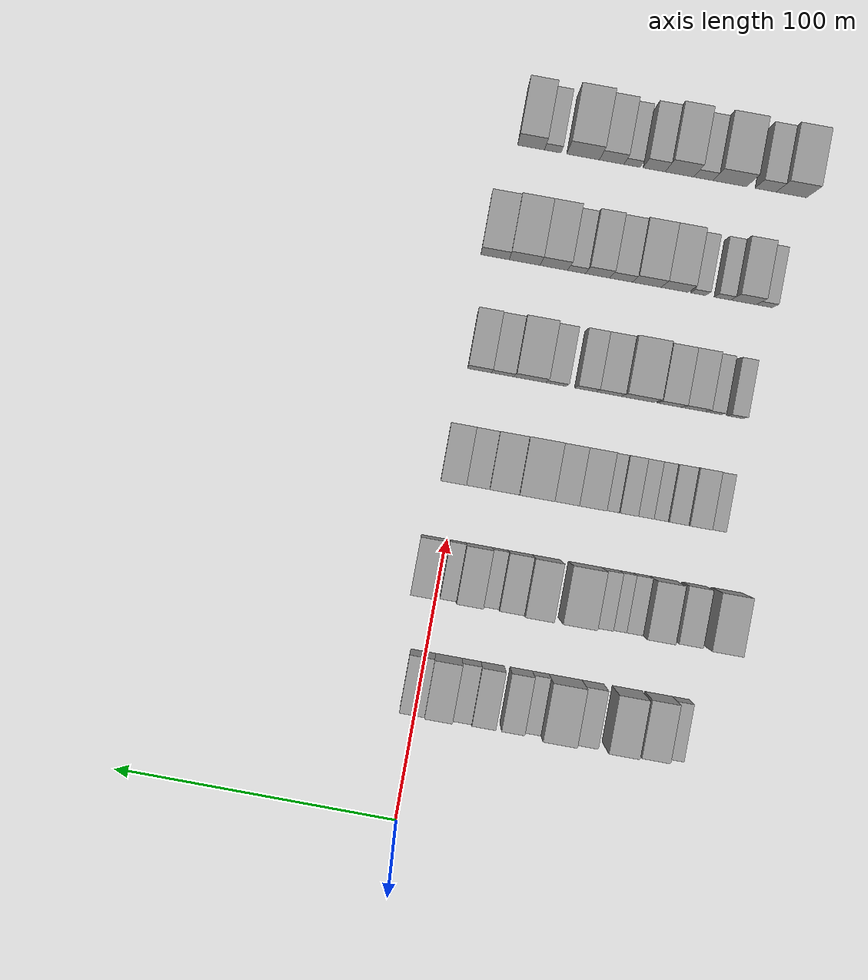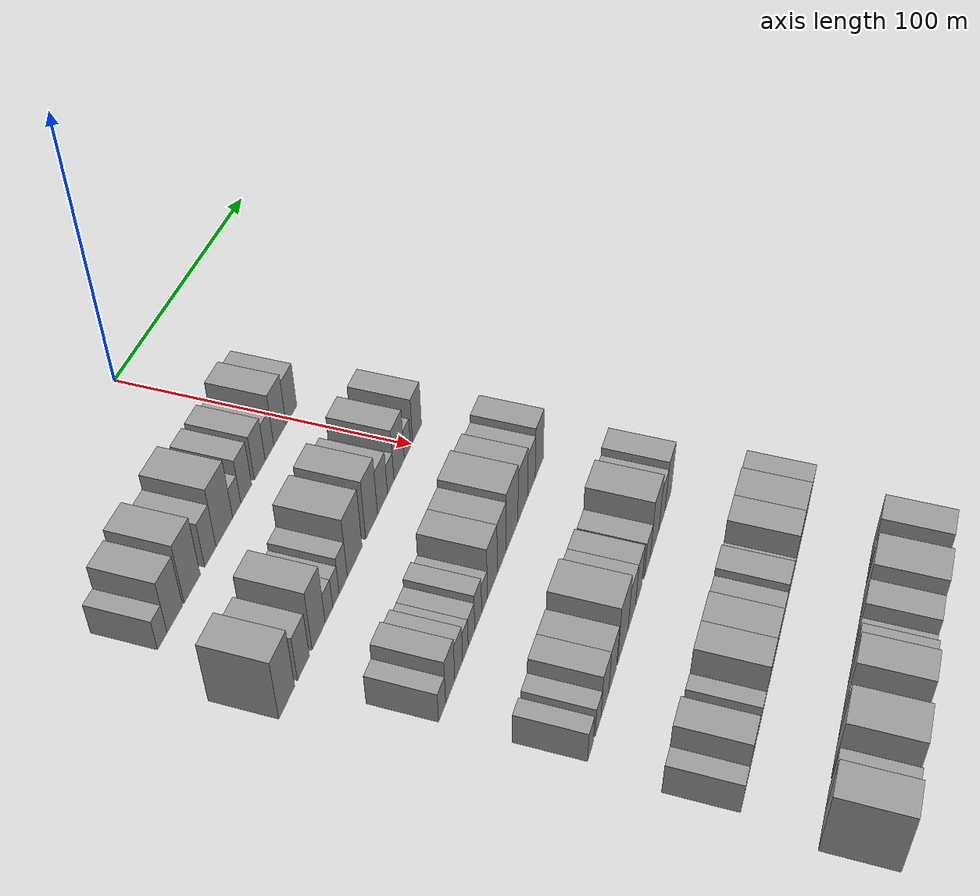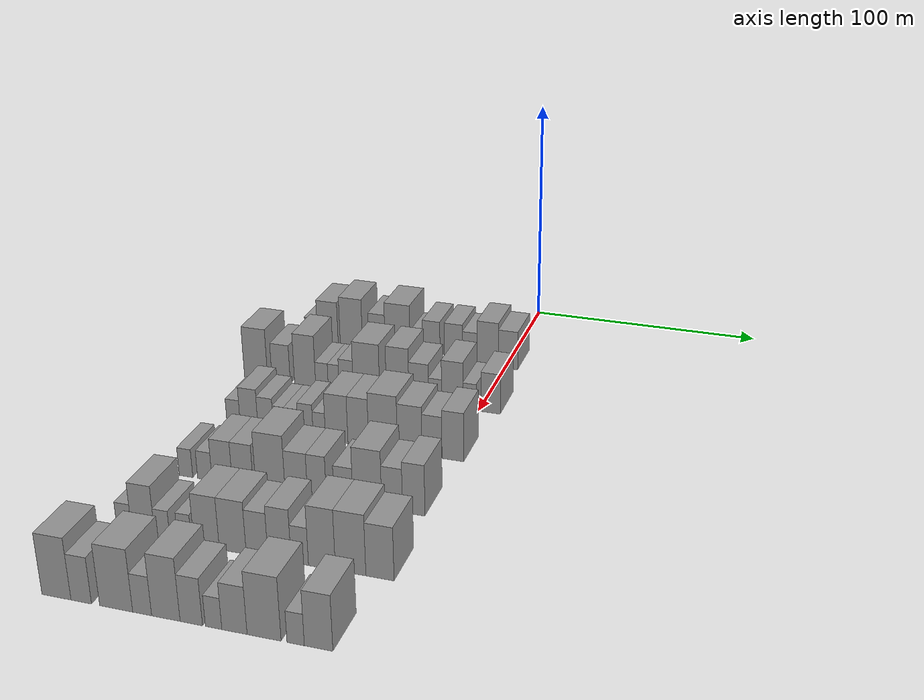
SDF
<sdf version="1.6">
 <world name="default">
  <model name="building_62">
   <static>1</static>
   <pose>50.0000 -90.3593 0 0.000000 0.000000 0.000000</pose>
   <link name="link">
    <pose>0 0 6.00 0 0 0</pose>
    <collision name="collision"><geometry><box><size>20.0000 5.9306 12.0000</size></box></geometry></collision>
    <visual name="visual">
     <cast_shadows>0</cast_shadows>
     <geometry><box><size>20.0000 5.9306 12.0000</size></box></geometry>
     <material>
      <script>
       <uri>model://grey_wall/materials/scripts</uri>
       <uri>model://grey_wall/materials/textures</uri>
       <name>vrc/grey_wall</name>
      </script>
     </material>
    </visual>
   </link>
  </model>
  <model name="building_63">
   <static>1</static>
   <pose>50.0000 -82.4639 0 0.000000 0.000000 0.000000</pose>
   <link name="link">
    <pose>0 0 10.50 0 0 0</pose>
    <collision name="collision"><geometry><box><size>20.0000 9.8602 21.0000</size></box></geometry></collision>
    <visual name="visual">
     <cast_shadows>0</cast_shadows>
     <geometry><box><size>20.0000 9.8602 21.0000</size></box></geometry>
     <material>
      <script>
       <uri>model://grey_wall/materials/scripts</uri>
       <uri>model://grey_wall/materials/textures</uri>
       <name>vrc/grey_wall</name>
      </script>
     </material>
    </visual>
   </link>
  </model>
  <model name="building_64">
   <static>1</static>
   <pose>50.0000 -71.2264 0 0.000000 0.000000 0.000000</pose>
   <link name="link">
    <pose>0 0 12.00 0 0 0</pose>
    <collision name="collision"><geometry><box><size>20.0000 10.6148 24.0000</size></box></geometry></collision>
    <visual name="visual">
     <cast_shadows>0</cast_shadows>
     <geometry><box><size>20.0000 10.6148 24.0000</size></box></geometry>
     <material>
      <script>
       <uri>model://grey_wall/materials/scripts</uri>
       <uri>model://grey_wall/materials/textures</uri>
       <name>vrc/grey_wall</name>
      </script>
     </material>
    </visual>
   </link>
  </model>
  <model name="building_65">
   <static>1</static>
   <pose>50.0000 -59.0581 0 0.000000 0.000000 0.000000</pose>
   <link name="link">
    <pose>0 0 9.00 0 0 0</pose>
    <collision name="collision"><geometry><box><size>20.0000 7.7218 18.0000</size></box></geometry></collision>
    <visual name="visual">
     <cast_shadows>0</cast_shadows>
     <geometry><box><size>20.0000 7.7218 18.0000</size></box></geometry>
     <material>
      <script>
       <uri>model://grey_wall/materials/scripts</uri>
       <uri>model://grey_wall/materials/textures</uri>
       <name>vrc/grey_wall</name>
      </script>
     </material>
    </visual>
   </link>
  </model>
  <model name="building_66">
   <static>1</static>
   <pose>50.0000 -49.3336 0 0.000000 0.000000 0.000000</pose>
   <link name="link">
    <pose>0 0 12.00 0 0 0</pose>
    <collision name="collision"><geometry><box><size>20.0000 11.7272 24.0000</size></box></geometry></collision>
    <visual name="visual">
     <cast_shadows>0</cast_shadows>
     <geometry><box><size>20.0000 11.7272 24.0000</size></box></geometry>
     <material>
      <script>
       <uri>model://grey_wall/materials/scripts</uri>
       <uri>model://grey_wall/materials/textures</uri>
       <name>vrc/grey_wall</name>
      </script>
     </material>
    </visual>
   </link>
  </model>
  <model name="building_67">
   <static>1</static>
   <pose>50.0000 -40.5230 0 0.000000 0.000000 0.000000</pose>
   <link name="link">
    <pose>0 0 6.00 0 0 0</pose>
    <collision name="collision"><geometry><box><size>20.0000 5.8940 12.0000</size></box></geometry></collision>
    <visual name="visual">
     <cast_shadows>0</cast_shadows>
     <geometry><box><size>20.0000 5.8940 12.0000</size></box></geometry>
     <material>
      <script>
       <uri>model://grey_wall/materials/scripts</uri>
       <uri>model://grey_wall/materials/textures</uri>
       <name>vrc/grey_wall</name>
      </script>
     </material>
    </visual>
   </link>
  </model>
  <model name="building_68">
   <static>1</static>
   <pose>50.0000 -33.5861 0 0.000000 0.000000 0.000000</pose>
   <link name="link">
    <pose>0 0 9.00 0 0 0</pose>
    <collision name="collision"><geometry><box><size>20.0000 7.9797 18.0000</size></box></geometry></collision>
    <visual name="visual">
     <cast_shadows>0</cast_shadows>
     <geometry><box><size>20.0000 7.9797 18.0000</size></box></geometry>
     <material>
      <script>
       <uri>model://grey_wall/materials/scripts</uri>
       <uri>model://grey_wall/materials/textures</uri>
       <name>vrc/grey_wall</name>
      </script>
     </material>
    </visual>
   </link>
  </model>
  <model name="building_69">
   <static>1</static>
   <pose>50.0000 -23.4748 0 0.000000 0.000000 0.000000</pose>
   <link name="link">
    <pose>0 0 9.00 0 0 0</pose>
    <collision name="collision"><geometry><box><size>20.0000 8.2430 18.0000</size></box></geometry></collision>
    <visual name="visual">
     <cast_shadows>0</cast_shadows>
     <geometry><box><size>20.0000 8.2430 18.0000</size></box></geometry>
     <material>
      <script>
       <uri>model://grey_wall/materials/scripts</uri>
       <uri>model://grey_wall/materials/textures</uri>
       <name>vrc/grey_wall</name>
      </script>
     </material>
    </visual>
   </link>
  </model>
  <model name="building_70">
   <static>1</static>
   <pose>50.0000 -15.9888 0 0.000000 0.000000 0.000000</pose>
   <link name="link">
    <pose>0 0 7.50 0 0 0</pose>
    <collision name="collision"><geometry><box><size>20.0000 6.7289 15.0000</size></box></geometry></collision>
    <visual name="visual">
     <cast_shadows>0</cast_shadows>
     <geometry><box><size>20.0000 6.7289 15.0000</size></box></geometry>
     <material>
      <script>
       <uri>model://grey_wall/materials/scripts</uri>
       <uri>model://grey_wall/materials/textures</uri>
       <name>vrc/grey_wall</name>
      </script>
     </material>
    </visual>
   </link>
  </model>
  <model name="building_71">
   <static>1</static>
   <pose>50.0000 -7.8164 0 0.000000 0.000000 0.000000</pose>
   <link name="link">
    <pose>0 0 10.50 0 0 0</pose>
    <collision name="collision"><geometry><box><size>20.0000 9.6159 21.0000</size></box></geometry></collision>
    <visual name="visual">
     <cast_shadows>0</cast_shadows>
     <geometry><box><size>20.0000 9.6159 21.0000</size></box></geometry>
     <material>
      <script>
       <uri>model://grey_wall/materials/scripts</uri>
       <uri>model://grey_wall/materials/textures</uri>
       <name>vrc/grey_wall</name>
      </script>
     </material>
    </visual>
   </link>
  </model>
  <model name="building_72">
   <static>1</static>
   <pose>50.0000 1.3254 0 0.000000 0.000000 0.000000</pose>
   <link name="link">
    <pose>0 0 9.00 0 0 0</pose>
    <collision name="collision"><geometry><box><size>20.0000 8.6677 18.0000</size></box></geometry></collision>
    <visual name="visual">
     <cast_shadows>0</cast_shadows>
     <geometry><box><size>20.0000 8.6677 18.0000</size></box></geometry>
     <material>
      <script>
       <uri>model://grey_wall/materials/scripts</uri>
       <uri>model://grey_wall/materials/textures</uri>
       <name>vrc/grey_wall</name>
      </script>
     </material>
    </visual>
   </link>
  </model>
  <model name="building_199">
   <static>1</static>
   <pose>90.0000 -99.2210 0 0.000000 0.000000 0.000000</pose>
   <link name="link">
    <pose>0 0 12.00 0 0 0</pose>
    <collision name="collision"><geometry><box><size>20.0000 10.7928 24.0000</size></box></geometry></collision>
    <visual name="visual">
     <cast_shadows>0</cast_shadows>
     <geometry><box><size>20.0000 10.7928 24.0000</size></box></geometry>
     <material>
      <script>
       <uri>model://grey_wall/materials/scripts</uri>
       <uri>model://grey_wall/materials/textures</uri>
       <name>vrc/grey_wall</name>
      </script>
     </material>
    </visual>
   </link>
  </model>
  <model name="building_200">
   <static>1</static>
   <pose>90.0000 -87.6191 0 0.000000 0.000000 0.000000</pose>
   <link name="link">
    <pose>0 0 9.00 0 0 0</pose>
    <collision name="collision"><geometry><box><size>20.0000 8.4111 18.0000</size></box></geometry></collision>
    <visual name="visual">
     <cast_shadows>0</cast_shadows>
     <geometry><box><size>20.0000 8.4111 18.0000</size></box></geometry>
     <material>
      <script>
       <uri>model://grey_wall/materials/scripts</uri>
       <uri>model://grey_wall/materials/textures</uri>
       <name>vrc/grey_wall</name>
      </script>
     </material>
    </visual>
   </link>
  </model>
  <model name="building_201">
   <static>1</static>
   <pose>90.0000 -76.5967 0 0.000000 0.000000 0.000000</pose>
   <link name="link">
    <pose>0 0 12.00 0 0 0</pose>
    <collision name="collision"><geometry><box><size>20.0000 9.6337 24.0000</size></box></geometry></collision>
    <visual name="visual">
     <cast_shadows>0</cast_shadows>
     <geometry><box><size>20.0000 9.6337 24.0000</size></box></geometry>
     <material>
      <script>
       <uri>model://grey_wall/materials/scripts</uri>
       <uri>model://grey_wall/materials/textures</uri>
       <name>vrc/grey_wall</name>
      </script>
     </material>
    </visual>
   </link>
  </model>
  <model name="building_202">
   <static>1</static>
   <pose>90.0000 -68.9331 0 0.000000 0.000000 0.000000</pose>
   <link name="link">
    <pose>0 0 6.00 0 0 0</pose>
    <collision name="collision"><geometry><box><size>20.0000 5.6935 12.0000</size></box></geometry></collision>
    <visual name="visual">
     <cast_shadows>0</cast_shadows>
     <geometry><box><size>20.0000 5.6935 12.0000</size></box></geometry>
     <material>
      <script>
       <uri>model://grey_wall/materials/scripts</uri>
       <uri>model://grey_wall/materials/textures</uri>
       <name>vrc/grey_wall</name>
      </script>
     </material>
    </visual>
   </link>
  </model>
  <model name="building_203">
   <static>1</static>
   <pose>90.0000 -63.6146 0 0.000000 0.000000 0.000000</pose>
   <link name="link">
    <pose>0 0 6.00 0 0 0</pose>
    <collision name="collision"><geometry><box><size>20.0000 4.9434 12.0000</size></box></geometry></collision>
    <visual name="visual">
     <cast_shadows>0</cast_shadows>
     <geometry><box><size>20.0000 4.9434 12.0000</size></box></geometry>
     <material>
      <script>
       <uri>model://grey_wall/materials/scripts</uri>
       <uri>model://grey_wall/materials/textures</uri>
       <name>vrc/grey_wall</name>
      </script>
     </material>
    </visual>
   </link>
  </model>
  <model name="building_204">
   <static>1</static>
   <pose>90.0000 -57.9776 0 0.000000 0.000000 0.000000</pose>
   <link name="link">
    <pose>0 0 7.50 0 0 0</pose>
    <collision name="collision"><geometry><box><size>20.0000 6.3308 15.0000</size></box></geometry></collision>
    <visual name="visual">
     <cast_shadows>0</cast_shadows>
     <geometry><box><size>20.0000 6.3308 15.0000</size></box></geometry>
     <material>
      <script>
       <uri>model://grey_wall/materials/scripts</uri>
       <uri>model://grey_wall/materials/textures</uri>
       <name>vrc/grey_wall</name>
      </script>
     </material>
    </visual>
   </link>
  </model>
  <model name="building_205">
   <static>1</static>
   <pose>90.0000 -48.9241 0 0.000000 0.000000 0.000000</pose>
   <link name="link">
    <pose>0 0 12.00 0 0 0</pose>
    <collision name="collision"><geometry><box><size>20.0000 11.7762 24.0000</size></box></geometry></collision>
    <visual name="visual">
     <cast_shadows>0</cast_shadows>
     <geometry><box><size>20.0000 11.7762 24.0000</size></box></geometry>
     <material>
      <script>
       <uri>model://grey_wall/materials/scripts</uri>
       <uri>model://grey_wall/materials/textures</uri>
       <name>vrc/grey_wall</name>
      </script>
     </material>
    </visual>
   </link>
  </model>
  <model name="building_206">
   <static>1</static>
   <pose>90.0000 -35.0987 0 0.000000 0.000000 0.000000</pose>
   <link name="link">
    <pose>0 0 12.00 0 0 0</pose>
    <collision name="collision"><geometry><box><size>20.0000 9.8747 24.0000</size></box></geometry></collision>
    <visual name="visual">
     <cast_shadows>0</cast_shadows>
     <geometry><box><size>20.0000 9.8747 24.0000</size></box></geometry>
     <material>
      <script>
       <uri>model://grey_wall/materials/scripts</uri>
       <uri>model://grey_wall/materials/textures</uri>
       <name>vrc/grey_wall</name>
      </script>
     </material>
    </visual>
   </link>
  </model>
  <model name="building_207">
   <static>1</static>
   <pose>90.0000 -25.8969 0 0.000000 0.000000 0.000000</pose>
   <link name="link">
    <pose>0 0 9.00 0 0 0</pose>
    <collision name="collision"><geometry><box><size>20.0000 8.5288 18.0000</size></box></geometry></collision>
    <visual name="visual">
     <cast_shadows>0</cast_shadows>
     <geometry><box><size>20.0000 8.5288 18.0000</size></box></geometry>
     <material>
      <script>
       <uri>model://grey_wall/materials/scripts</uri>
       <uri>model://grey_wall/materials/textures</uri>
       <name>vrc/grey_wall</name>
      </script>
     </material>
    </visual>
   </link>
  </model>
  <model name="building_208">
   <static>1</static>
   <pose>90.0000 -18.7853 0 0.000000 0.000000 0.000000</pose>
   <link name="link">
    <pose>0 0 6.00 0 0 0</pose>
    <collision name="collision"><geometry><box><size>20.0000 5.6943 12.0000</size></box></geometry></collision>
    <visual name="visual">
     <cast_shadows>0</cast_shadows>
     <geometry><box><size>20.0000 5.6943 12.0000</size></box></geometry>
     <material>
      <script>
       <uri>model://grey_wall/materials/scripts</uri>
       <uri>model://grey_wall/materials/textures</uri>
       <name>vrc/grey_wall</name>
      </script>
     </material>
    </visual>
   </link>
  </model>
  <model name="building_209">
   <static>1</static>
   <pose>90.0000 -11.3557 0 0.000000 0.000000 0.000000</pose>
   <link name="link">
    <pose>0 0 10.50 0 0 0</pose>
    <collision name="collision"><geometry><box><size>20.0000 9.1650 21.0000</size></box></geometry></collision>
    <visual name="visual">
     <cast_shadows>0</cast_shadows>
     <geometry><box><size>20.0000 9.1650 21.0000</size></box></geometry>
     <material>
      <script>
       <uri>model://grey_wall/materials/scripts</uri>
       <uri>model://grey_wall/materials/textures</uri>
       <name>vrc/grey_wall</name>
      </script>
     </material>
    </visual>
   </link>
  </model>
  <model name="building_210">
   <static>1</static>
   <pose>90.0000 -3.9449 0 0.000000 0.000000 0.000000</pose>
   <link name="link">
    <pose>0 0 6.00 0 0 0</pose>
    <collision name="collision"><geometry><box><size>20.0000 5.6567 12.0000</size></box></geometry></collision>
    <visual name="visual">
     <cast_shadows>0</cast_shadows>
     <geometry><box><size>20.0000 5.6567 12.0000</size></box></geometry>
     <material>
      <script>
       <uri>model://grey_wall/materials/scripts</uri>
       <uri>model://grey_wall/materials/textures</uri>
       <name>vrc/grey_wall</name>
      </script>
     </material>
    </visual>
   </link>
  </model>
  <model name="building_211">
   <static>1</static>
   <pose>90.0000 5.0111 0 0.000000 0.000000 0.000000</pose>
   <link name="link">
    <pose>0 0 9.00 0 0 0</pose>
    <collision name="collision"><geometry><box><size>20.0000 8.2553 18.0000</size></box></geometry></collision>
    <visual name="visual">
     <cast_shadows>0</cast_shadows>
     <geometry><box><size>20.0000 8.2553 18.0000</size></box></geometry>
     <material>
      <script>
       <uri>model://grey_wall/materials/scripts</uri>
       <uri>model://grey_wall/materials/textures</uri>
       <name>vrc/grey_wall</name>
      </script>
     </material>
    </visual>
   </link>
  </model>
  <model name="building_338">
   <static>1</static>
   <pose>130.0000 -90.5752 0 0.000000 0.000000 0.000000</pose>
   <link name="link">
    <pose>0 0 6.00 0 0 0</pose>
    <collision name="collision"><geometry><box><size>20.0000 5.8258 12.0000</size></box></geometry></collision>
    <visual name="visual">
     <cast_shadows>0</cast_shadows>
     <geometry><box><size>20.0000 5.8258 12.0000</size></box></geometry>
     <material>
      <script>
       <uri>model://grey_wall/materials/scripts</uri>
       <uri>model://grey_wall/materials/textures</uri>
       <name>vrc/grey_wall</name>
      </script>
     </material>
    </visual>
   </link>
  </model>
  <model name="building_339">
   <static>1</static>
   <pose>130.0000 -83.8008 0 0.000000 0.000000 0.000000</pose>
   <link name="link">
    <pose>0 0 9.00 0 0 0</pose>
    <collision name="collision"><geometry><box><size>20.0000 7.7231 18.0000</size></box></geometry></collision>
    <visual name="visual">
     <cast_shadows>0</cast_shadows>
     <geometry><box><size>20.0000 7.7231 18.0000</size></box></geometry>
     <material>
      <script>
       <uri>model://grey_wall/materials/scripts</uri>
       <uri>model://grey_wall/materials/textures</uri>
       <name>vrc/grey_wall</name>
      </script>
     </material>
    </visual>
   </link>
  </model>
  <model name="building_340">
   <static>1</static>
   <pose>130.0000 -76.5899 0 0.000000 0.000000 0.000000</pose>
   <link name="link">
    <pose>0 0 7.50 0 0 0</pose>
    <collision name="collision"><geometry><box><size>20.0000 6.6986 15.0000</size></box></geometry></collision>
    <visual name="visual">
     <cast_shadows>0</cast_shadows>
     <geometry><box><size>20.0000 6.6986 15.0000</size></box></geometry>
     <material>
      <script>
       <uri>model://grey_wall/materials/scripts</uri>
       <uri>model://grey_wall/materials/textures</uri>
       <name>vrc/grey_wall</name>
      </script>
     </material>
    </visual>
   </link>
  </model>
  <model name="building_341">
   <static>1</static>
   <pose>130.0000 -70.7711 0 0.000000 0.000000 0.000000</pose>
   <link name="link">
    <pose>0 0 6.00 0 0 0</pose>
    <collision name="collision"><geometry><box><size>20.0000 4.9391 12.0000</size></box></geometry></collision>
    <visual name="visual">
     <cast_shadows>0</cast_shadows>
     <geometry><box><size>20.0000 4.9391 12.0000</size></box></geometry>
     <material>
      <script>
       <uri>model://grey_wall/materials/scripts</uri>
       <uri>model://grey_wall/materials/textures</uri>
       <name>vrc/grey_wall</name>
      </script>
     </material>
    </visual>
   </link>
  </model>
  <model name="building_342">
   <static>1</static>
   <pose>130.0000 -65.4029 0 0.000000 0.000000 0.000000</pose>
   <link name="link">
    <pose>0 0 6.00 0 0 0</pose>
    <collision name="collision"><geometry><box><size>20.0000 5.7972 12.0000</size></box></geometry></collision>
    <visual name="visual">
     <cast_shadows>0</cast_shadows>
     <geometry><box><size>20.0000 5.7972 12.0000</size></box></geometry>
     <material>
      <script>
       <uri>model://grey_wall/materials/scripts</uri>
       <uri>model://grey_wall/materials/textures</uri>
       <name>vrc/grey_wall</name>
      </script>
     </material>
    </visual>
   </link>
  </model>
  <model name="building_343">
   <static>1</static>
   <pose>130.0000 -59.3517 0 0.000000 0.000000 0.000000</pose>
   <link name="link">
    <pose>0 0 7.50 0 0 0</pose>
    <collision name="collision"><geometry><box><size>20.0000 6.3052 15.0000</size></box></geometry></collision>
    <visual name="visual">
     <cast_shadows>0</cast_shadows>
     <geometry><box><size>20.0000 6.3052 15.0000</size></box></geometry>
     <material>
      <script>
       <uri>model://grey_wall/materials/scripts</uri>
       <uri>model://grey_wall/materials/textures</uri>
       <name>vrc/grey_wall</name>
      </script>
     </material>
    </visual>
   </link>
  </model>
  <model name="building_344">
   <static>1</static>
   <pose>130.0000 -53.5907 0 0.000000 0.000000 0.000000</pose>
   <link name="link">
    <pose>0 0 6.00 0 0 0</pose>
    <collision name="collision"><geometry><box><size>20.0000 5.2168 12.0000</size></box></geometry></collision>
    <visual name="visual">
     <cast_shadows>0</cast_shadows>
     <geometry><box><size>20.0000 5.2168 12.0000</size></box></geometry>
     <material>
      <script>
       <uri>model://grey_wall/materials/scripts</uri>
       <uri>model://grey_wall/materials/textures</uri>
       <name>vrc/grey_wall</name>
      </script>
     </material>
    </visual>
   </link>
  </model>
  <model name="building_345">
   <static>1</static>
   <pose>130.0000 -46.2655 0 0.000000 0.000000 0.000000</pose>
   <link name="link">
    <pose>0 0 10.50 0 0 0</pose>
    <collision name="collision"><geometry><box><size>20.0000 9.4336 21.0000</size></box></geometry></collision>
    <visual name="visual">
     <cast_shadows>0</cast_shadows>
     <geometry><box><size>20.0000 9.4336 21.0000</size></box></geometry>
     <material>
      <script>
       <uri>model://grey_wall/materials/scripts</uri>
       <uri>model://grey_wall/materials/textures</uri>
       <name>vrc/grey_wall</name>
      </script>
     </material>
    </visual>
   </link>
  </model>
  <model name="building_346">
   <static>1</static>
   <pose>130.0000 -37.2231 0 0.000000 0.000000 0.000000</pose>
   <link name="link">
    <pose>0 0 10.50 0 0 0</pose>
    <collision name="collision"><geometry><box><size>20.0000 8.6513 21.0000</size></box></geometry></collision>
    <visual name="visual">
     <cast_shadows>0</cast_shadows>
     <geometry><box><size>20.0000 8.6513 21.0000</size></box></geometry>
     <material>
      <script>
       <uri>model://grey_wall/materials/scripts</uri>
       <uri>model://grey_wall/materials/textures</uri>
       <name>vrc/grey_wall</name>
      </script>
     </material>
    </visual>
   </link>
  </model>
  <model name="building_347">
   <static>1</static>
   <pose>130.0000 -26.9486 0 0.000000 0.000000 0.000000</pose>
   <link name="link">
    <pose>0 0 12.00 0 0 0</pose>
    <collision name="collision"><geometry><box><size>20.0000 11.8978 24.0000</size></box></geometry></collision>
    <visual name="visual">
     <cast_shadows>0</cast_shadows>
     <geometry><box><size>20.0000 11.8978 24.0000</size></box></geometry>
     <material>
      <script>
       <uri>model://grey_wall/materials/scripts</uri>
       <uri>model://grey_wall/materials/textures</uri>
       <name>vrc/grey_wall</name>
      </script>
     </material>
    </visual>
   </link>
  </model>
  <model name="building_348">
   <static>1</static>
   <pose>130.0000 -15.9642 0 0.000000 0.000000 0.000000</pose>
   <link name="link">
    <pose>0 0 10.50 0 0 0</pose>
    <collision name="collision"><geometry><box><size>20.0000 10.0710 21.0000</size></box></geometry></collision>
    <visual name="visual">
     <cast_shadows>0</cast_shadows>
     <geometry><box><size>20.0000 10.0710 21.0000</size></box></geometry>
     <material>
      <script>
       <uri>model://grey_wall/materials/scripts</uri>
       <uri>model://grey_wall/materials/textures</uri>
       <name>vrc/grey_wall</name>
      </script>
     </material>
    </visual>
   </link>
  </model>
  <model name="building_349">
   <static>1</static>
   <pose>130.0000 -6.8928 0 0.000000 0.000000 0.000000</pose>
   <link name="link">
    <pose>0 0 9.00 0 0 0</pose>
    <collision name="collision"><geometry><box><size>20.0000 8.0718 18.0000</size></box></geometry></collision>
    <visual name="visual">
     <cast_shadows>0</cast_shadows>
     <geometry><box><size>20.0000 8.0718 18.0000</size></box></geometry>
     <material>
      <script>
       <uri>model://grey_wall/materials/scripts</uri>
       <uri>model://grey_wall/materials/textures</uri>
       <name>vrc/grey_wall</name>
      </script>
     </material>
    </visual>
   </link>
  </model>
  <model name="building_350">
   <static>1</static>
   <pose>130.0000 1.5265 0 0.000000 0.000000 0.000000</pose>
   <link name="link">
    <pose>0 0 10.50 0 0 0</pose>
    <collision name="collision"><geometry><box><size>20.0000 8.7669 21.0000</size></box></geometry></collision>
    <visual name="visual">
     <cast_shadows>0</cast_shadows>
     <geometry><box><size>20.0000 8.7669 21.0000</size></box></geometry>
     <material>
      <script>
       <uri>model://grey_wall/materials/scripts</uri>
       <uri>model://grey_wall/materials/textures</uri>
       <name>vrc/grey_wall</name>
      </script>
     </material>
    </visual>
   </link>
  </model>
  <model name="building_481">
   <static>1</static>
   <pose>170.0000 -91.1072 0 0.000000 0.000000 0.000000</pose>
   <link name="link">
    <pose>0 0 6.00 0 0 0</pose>
    <collision name="collision"><geometry><box><size>20.0000 5.6377 12.0000</size></box></geometry></collision>
    <visual name="visual">
     <cast_shadows>0</cast_shadows>
     <geometry><box><size>20.0000 5.6377 12.0000</size></box></geometry>
     <material>
      <script>
       <uri>model://grey_wall/materials/scripts</uri>
       <uri>model://grey_wall/materials/textures</uri>
       <name>vrc/grey_wall</name>
      </script>
     </material>
    </visual>
   </link>
  </model>
  <model name="building_482">
   <static>1</static>
   <pose>170.0000 -83.3127 0 0.000000 0.000000 0.000000</pose>
   <link name="link">
    <pose>0 0 6.00 0 0 0</pose>
    <collision name="collision"><geometry><box><size>20.0000 5.9513 12.0000</size></box></geometry></collision>
    <visual name="visual">
     <cast_shadows>0</cast_shadows>
     <geometry><box><size>20.0000 5.9513 12.0000</size></box></geometry>
     <material>
      <script>
       <uri>model://grey_wall/materials/scripts</uri>
       <uri>model://grey_wall/materials/textures</uri>
       <name>vrc/grey_wall</name>
      </script>
     </material>
    </visual>
   </link>
  </model>
  <model name="building_483">
   <static>1</static>
   <pose>170.0000 -76.1805 0 0.000000 0.000000 0.000000</pose>
   <link name="link">
    <pose>0 0 9.00 0 0 0</pose>
    <collision name="collision"><geometry><box><size>20.0000 8.3131 18.0000</size></box></geometry></collision>
    <visual name="visual">
     <cast_shadows>0</cast_shadows>
     <geometry><box><size>20.0000 8.3131 18.0000</size></box></geometry>
     <material>
      <script>
       <uri>model://grey_wall/materials/scripts</uri>
       <uri>model://grey_wall/materials/textures</uri>
       <name>vrc/grey_wall</name>
      </script>
     </material>
    </visual>
   </link>
  </model>
  <model name="building_484">
   <static>1</static>
   <pose>170.0000 -67.7469 0 0.000000 0.000000 0.000000</pose>
   <link name="link">
    <pose>0 0 9.00 0 0 0</pose>
    <collision name="collision"><geometry><box><size>20.0000 8.5540 18.0000</size></box></geometry></collision>
    <visual name="visual">
     <cast_shadows>0</cast_shadows>
     <geometry><box><size>20.0000 8.5540 18.0000</size></box></geometry>
     <material>
      <script>
       <uri>model://grey_wall/materials/scripts</uri>
       <uri>model://grey_wall/materials/textures</uri>
       <name>vrc/grey_wall</name>
      </script>
     </material>
    </visual>
   </link>
  </model>
  <model name="building_485">
   <static>1</static>
   <pose>170.0000 -56.5778 0 0.000000 0.000000 0.000000</pose>
   <link name="link">
    <pose>0 0 12.00 0 0 0</pose>
    <collision name="collision"><geometry><box><size>20.0000 11.7844 24.0000</size></box></geometry></collision>
    <visual name="visual">
     <cast_shadows>0</cast_shadows>
     <geometry><box><size>20.0000 11.7844 24.0000</size></box></geometry>
     <material>
      <script>
       <uri>model://grey_wall/materials/scripts</uri>
       <uri>model://grey_wall/materials/textures</uri>
       <name>vrc/grey_wall</name>
      </script>
     </material>
    </visual>
   </link>
  </model>
  <model name="building_486">
   <static>1</static>
   <pose>170.0000 -46.2279 0 0.000000 0.000000 0.000000</pose>
   <link name="link">
    <pose>0 0 9.00 0 0 0</pose>
    <collision name="collision"><geometry><box><size>20.0000 8.9153 18.0000</size></box></geometry></collision>
    <visual name="visual">
     <cast_shadows>0</cast_shadows>
     <geometry><box><size>20.0000 8.9153 18.0000</size></box></geometry>
     <material>
      <script>
       <uri>model://grey_wall/materials/scripts</uri>
       <uri>model://grey_wall/materials/textures</uri>
       <name>vrc/grey_wall</name>
      </script>
     </material>
    </visual>
   </link>
  </model>
  <model name="building_487">
   <static>1</static>
   <pose>170.0000 -38.0439 0 0.000000 0.000000 0.000000</pose>
   <link name="link">
    <pose>0 0 9.00 0 0 0</pose>
    <collision name="collision"><geometry><box><size>20.0000 7.4527 18.0000</size></box></geometry></collision>
    <visual name="visual">
     <cast_shadows>0</cast_shadows>
     <geometry><box><size>20.0000 7.4527 18.0000</size></box></geometry>
     <material>
      <script>
       <uri>model://grey_wall/materials/scripts</uri>
       <uri>model://grey_wall/materials/textures</uri>
       <name>vrc/grey_wall</name>
      </script>
     </material>
    </visual>
   </link>
  </model>
  <model name="building_488">
   <static>1</static>
   <pose>170.0000 -27.6184 0 0.000000 0.000000 0.000000</pose>
   <link name="link">
    <pose>0 0 7.50 0 0 0</pose>
    <collision name="collision"><geometry><box><size>20.0000 7.3983 15.0000</size></box></geometry></collision>
    <visual name="visual">
     <cast_shadows>0</cast_shadows>
     <geometry><box><size>20.0000 7.3983 15.0000</size></box></geometry>
     <material>
      <script>
       <uri>model://grey_wall/materials/scripts</uri>
       <uri>model://grey_wall/materials/textures</uri>
       <name>vrc/grey_wall</name>
      </script>
     </material>
    </visual>
   </link>
  </model>
  <model name="building_489">
   <static>1</static>
   <pose>170.0000 -18.3587 0 0.000000 0.000000 0.000000</pose>
   <link name="link">
    <pose>0 0 12.00 0 0 0</pose>
    <collision name="collision"><geometry><box><size>20.0000 11.1211 24.0000</size></box></geometry></collision>
    <visual name="visual">
     <cast_shadows>0</cast_shadows>
     <geometry><box><size>20.0000 11.1211 24.0000</size></box></geometry>
     <material>
      <script>
       <uri>model://grey_wall/materials/scripts</uri>
       <uri>model://grey_wall/materials/textures</uri>
       <name>vrc/grey_wall</name>
      </script>
     </material>
    </visual>
   </link>
  </model>
  <model name="building_490">
   <static>1</static>
   <pose>170.0000 -8.8186 0 0.000000 0.000000 0.000000</pose>
   <link name="link">
    <pose>0 0 9.00 0 0 0</pose>
    <collision name="collision"><geometry><box><size>20.0000 7.9590 18.0000</size></box></geometry></collision>
    <visual name="visual">
     <cast_shadows>0</cast_shadows>
     <geometry><box><size>20.0000 7.9590 18.0000</size></box></geometry>
     <material>
      <script>
       <uri>model://grey_wall/materials/scripts</uri>
       <uri>model://grey_wall/materials/textures</uri>
       <name>vrc/grey_wall</name>
      </script>
     </material>
    </visual>
   </link>
  </model>
  <model name="building_491">
   <static>1</static>
   <pose>170.0000 -0.5933 0 0.000000 0.000000 0.000000</pose>
   <link name="link">
    <pose>0 0 10.50 0 0 0</pose>
    <collision name="collision"><geometry><box><size>20.0000 8.4917 21.0000</size></box></geometry></collision>
    <visual name="visual">
     <cast_shadows>0</cast_shadows>
     <geometry><box><size>20.0000 8.4917 21.0000</size></box></geometry>
     <material>
      <script>
       <uri>model://grey_wall/materials/scripts</uri>
       <uri>model://grey_wall/materials/textures</uri>
       <name>vrc/grey_wall</name>
      </script>
     </material>
    </visual>
   </link>
  </model>
  <model name="building_617">
   <static>1</static>
   <pose>210.0000 -94.3986 0 0.000000 0.000000 0.000000</pose>
   <link name="link">
    <pose>0 0 6.00 0 0 0</pose>
    <collision name="collision"><geometry><box><size>20.0000 5.8070 12.0000</size></box></geometry></collision>
    <visual name="visual">
     <cast_shadows>0</cast_shadows>
     <geometry><box><size>20.0000 5.8070 12.0000</size></box></geometry>
     <material>
      <script>
       <uri>model://grey_wall/materials/scripts</uri>
       <uri>model://grey_wall/materials/textures</uri>
       <name>vrc/grey_wall</name>
      </script>
     </material>
    </visual>
   </link>
  </model>
  <model name="building_618">
   <static>1</static>
   <pose>210.0000 -86.9911 0 0.000000 0.000000 0.000000</pose>
   <link name="link">
    <pose>0 0 10.50 0 0 0</pose>
    <collision name="collision"><geometry><box><size>20.0000 9.0080 21.0000</size></box></geometry></collision>
    <visual name="visual">
     <cast_shadows>0</cast_shadows>
     <geometry><box><size>20.0000 9.0080 21.0000</size></box></geometry>
     <material>
      <script>
       <uri>model://grey_wall/materials/scripts</uri>
       <uri>model://grey_wall/materials/textures</uri>
       <name>vrc/grey_wall</name>
      </script>
     </material>
    </visual>
   </link>
  </model>
  <model name="building_619">
   <static>1</static>
   <pose>210.0000 -79.5554 0 0.000000 0.000000 0.000000</pose>
   <link name="link">
    <pose>0 0 6.00 0 0 0</pose>
    <collision name="collision"><geometry><box><size>20.0000 5.8636 12.0000</size></box></geometry></collision>
    <visual name="visual">
     <cast_shadows>0</cast_shadows>
     <geometry><box><size>20.0000 5.8636 12.0000</size></box></geometry>
     <material>
      <script>
       <uri>model://grey_wall/materials/scripts</uri>
       <uri>model://grey_wall/materials/textures</uri>
       <name>vrc/grey_wall</name>
      </script>
     </material>
    </visual>
   </link>
  </model>
  <model name="building_620">
   <static>1</static>
   <pose>210.0000 -70.9945 0 0.000000 0.000000 0.000000</pose>
   <link name="link">
    <pose>0 0 6.00 0 0 0</pose>
    <collision name="collision"><geometry><box><size>20.0000 5.2582 12.0000</size></box></geometry></collision>
    <visual name="visual">
     <cast_shadows>0</cast_shadows>
     <geometry><box><size>20.0000 5.2582 12.0000</size></box></geometry>
     <material>
      <script>
       <uri>model://grey_wall/materials/scripts</uri>
       <uri>model://grey_wall/materials/textures</uri>
       <name>vrc/grey_wall</name>
      </script>
     </material>
    </visual>
   </link>
  </model>
  <model name="building_621">
   <static>1</static>
   <pose>210.0000 -62.5736 0 0.000000 0.000000 0.000000</pose>
   <link name="link">
    <pose>0 0 10.50 0 0 0</pose>
    <collision name="collision"><geometry><box><size>20.0000 9.5835 21.0000</size></box></geometry></collision>
    <visual name="visual">
     <cast_shadows>0</cast_shadows>
     <geometry><box><size>20.0000 9.5835 21.0000</size></box></geometry>
     <material>
      <script>
       <uri>model://grey_wall/materials/scripts</uri>
       <uri>model://grey_wall/materials/textures</uri>
       <name>vrc/grey_wall</name>
      </script>
     </material>
    </visual>
   </link>
  </model>
  <model name="building_622">
   <static>1</static>
   <pose>210.0000 -52.7031 0 0.000000 0.000000 0.000000</pose>
   <link name="link">
    <pose>0 0 10.50 0 0 0</pose>
    <collision name="collision"><geometry><box><size>20.0000 10.1574 21.0000</size></box></geometry></collision>
    <visual name="visual">
     <cast_shadows>0</cast_shadows>
     <geometry><box><size>20.0000 10.1574 21.0000</size></box></geometry>
     <material>
      <script>
       <uri>model://grey_wall/materials/scripts</uri>
       <uri>model://grey_wall/materials/textures</uri>
       <name>vrc/grey_wall</name>
      </script>
     </material>
    </visual>
   </link>
  </model>
  <model name="building_623">
   <static>1</static>
   <pose>210.0000 -43.5607 0 0.000000 0.000000 0.000000</pose>
   <link name="link">
    <pose>0 0 9.00 0 0 0</pose>
    <collision name="collision"><geometry><box><size>20.0000 8.1274 18.0000</size></box></geometry></collision>
    <visual name="visual">
     <cast_shadows>0</cast_shadows>
     <geometry><box><size>20.0000 8.1274 18.0000</size></box></geometry>
     <material>
      <script>
       <uri>model://grey_wall/materials/scripts</uri>
       <uri>model://grey_wall/materials/textures</uri>
       <name>vrc/grey_wall</name>
      </script>
     </material>
    </visual>
   </link>
  </model>
  <model name="building_624">
   <static>1</static>
   <pose>210.0000 -35.2034 0 0.000000 0.000000 0.000000</pose>
   <link name="link">
    <pose>0 0 10.50 0 0 0</pose>
    <collision name="collision"><geometry><box><size>20.0000 8.5874 21.0000</size></box></geometry></collision>
    <visual name="visual">
     <cast_shadows>0</cast_shadows>
     <geometry><box><size>20.0000 8.5874 21.0000</size></box></geometry>
     <material>
      <script>
       <uri>model://grey_wall/materials/scripts</uri>
       <uri>model://grey_wall/materials/textures</uri>
       <name>vrc/grey_wall</name>
      </script>
     </material>
    </visual>
   </link>
  </model>
  <model name="building_625">
   <static>1</static>
   <pose>210.0000 -27.7339 0 0.000000 0.000000 0.000000</pose>
   <link name="link">
    <pose>0 0 7.50 0 0 0</pose>
    <collision name="collision"><geometry><box><size>20.0000 6.3515 15.0000</size></box></geometry></collision>
    <visual name="visual">
     <cast_shadows>0</cast_shadows>
     <geometry><box><size>20.0000 6.3515 15.0000</size></box></geometry>
     <material>
      <script>
       <uri>model://grey_wall/materials/scripts</uri>
       <uri>model://grey_wall/materials/textures</uri>
       <name>vrc/grey_wall</name>
      </script>
     </material>
    </visual>
   </link>
  </model>
  <model name="building_626">
   <static>1</static>
   <pose>210.0000 -19.6580 0 0.000000 0.000000 0.000000</pose>
   <link name="link">
    <pose>0 0 12.00 0 0 0</pose>
    <collision name="collision"><geometry><box><size>20.0000 9.8004 24.0000</size></box></geometry></collision>
    <visual name="visual">
     <cast_shadows>0</cast_shadows>
     <geometry><box><size>20.0000 9.8004 24.0000</size></box></geometry>
     <material>
      <script>
       <uri>model://grey_wall/materials/scripts</uri>
       <uri>model://grey_wall/materials/textures</uri>
       <name>vrc/grey_wall</name>
      </script>
     </material>
    </visual>
   </link>
  </model>
  <model name="building_627">
   <static>1</static>
   <pose>210.0000 -9.2833 0 0.000000 0.000000 0.000000</pose>
   <link name="link">
    <pose>0 0 12.00 0 0 0</pose>
    <collision name="collision"><geometry><box><size>20.0000 10.9490 24.0000</size></box></geometry></collision>
    <visual name="visual">
     <cast_shadows>0</cast_shadows>
     <geometry><box><size>20.0000 10.9490 24.0000</size></box></geometry>
     <material>
      <script>
       <uri>model://grey_wall/materials/scripts</uri>
       <uri>model://grey_wall/materials/textures</uri>
       <name>vrc/grey_wall</name>
      </script>
     </material>
    </visual>
   </link>
  </model>
  <model name="building_628">
   <static>1</static>
   <pose>210.0000 1.2090 0 0.000000 0.000000 0.000000</pose>
   <link name="link">
    <pose>0 0 10.50 0 0 0</pose>
    <collision name="collision"><geometry><box><size>20.0000 10.0356 21.0000</size></box></geometry></collision>
    <visual name="visual">
     <cast_shadows>0</cast_shadows>
     <geometry><box><size>20.0000 10.0356 21.0000</size></box></geometry>
     <material>
      <script>
       <uri>model://grey_wall/materials/scripts</uri>
       <uri>model://grey_wall/materials/textures</uri>
       <name>vrc/grey_wall</name>
      </script>
     </material>
    </visual>
   </link>
  </model>
  <model name="building_762">
   <static>1</static>
   <pose>250.0000 -96.8572 0 0.000000 0.000000 0.000000</pose>
   <link name="link">
    <pose>0 0 12.00 0 0 0</pose>
    <collision name="collision"><geometry><box><size>20.0000 10.7932 24.0000</size></box></geometry></collision>
    <visual name="visual">
     <cast_shadows>0</cast_shadows>
     <geometry><box><size>20.0000 10.7932 24.0000</size></box></geometry>
     <material>
      <script>
       <uri>model://grey_wall/materials/scripts</uri>
       <uri>model://grey_wall/materials/textures</uri>
       <name>vrc/grey_wall</name>
      </script>
     </material>
    </visual>
   </link>
  </model>
  <model name="building_763">
   <static>1</static>
   <pose>250.0000 -87.6814 0 0.000000 0.000000 0.000000</pose>
   <link name="link">
    <pose>0 0 9.00 0 0 0</pose>
    <collision name="collision"><geometry><box><size>20.0000 7.5583 18.0000</size></box></geometry></collision>
    <visual name="visual">
     <cast_shadows>0</cast_shadows>
     <geometry><box><size>20.0000 7.5583 18.0000</size></box></geometry>
     <material>
      <script>
       <uri>model://grey_wall/materials/scripts</uri>
       <uri>model://grey_wall/materials/textures</uri>
       <name>vrc/grey_wall</name>
      </script>
     </material>
    </visual>
   </link>
  </model>
  <model name="building_764">
   <static>1</static>
   <pose>250.0000 -74.9074 0 0.000000 0.000000 0.000000</pose>
   <link name="link">
    <pose>0 0 12.00 0 0 0</pose>
    <collision name="collision"><geometry><box><size>20.0000 11.9895 24.0000</size></box></geometry></collision>
    <visual name="visual">
     <cast_shadows>0</cast_shadows>
     <geometry><box><size>20.0000 11.9895 24.0000</size></box></geometry>
     <material>
      <script>
       <uri>model://grey_wall/materials/scripts</uri>
       <uri>model://grey_wall/materials/textures</uri>
       <name>vrc/grey_wall</name>
      </script>
     </material>
    </visual>
   </link>
  </model>
  <model name="building_765">
   <static>1</static>
   <pose>250.0000 -65.5080 0 0.000000 0.000000 0.000000</pose>
   <link name="link">
    <pose>0 0 7.50 0 0 0</pose>
    <collision name="collision"><geometry><box><size>20.0000 6.8093 15.0000</size></box></geometry></collision>
    <visual name="visual">
     <cast_shadows>0</cast_shadows>
     <geometry><box><size>20.0000 6.8093 15.0000</size></box></geometry>
     <material>
      <script>
       <uri>model://grey_wall/materials/scripts</uri>
       <uri>model://grey_wall/materials/textures</uri>
       <name>vrc/grey_wall</name>
      </script>
     </material>
    </visual>
   </link>
  </model>
  <model name="building_766">
   <static>1</static>
   <pose>250.0000 -57.0430 0 0.000000 0.000000 0.000000</pose>
   <link name="link">
    <pose>0 0 12.00 0 0 0</pose>
    <collision name="collision"><geometry><box><size>20.0000 10.1206 24.0000</size></box></geometry></collision>
    <visual name="visual">
     <cast_shadows>0</cast_shadows>
     <geometry><box><size>20.0000 10.1206 24.0000</size></box></geometry>
     <material>
      <script>
       <uri>model://grey_wall/materials/scripts</uri>
       <uri>model://grey_wall/materials/textures</uri>
       <name>vrc/grey_wall</name>
      </script>
     </material>
    </visual>
   </link>
  </model>
  <model name="building_767">
   <static>1</static>
   <pose>250.0000 -48.0389 0 0.000000 0.000000 0.000000</pose>
   <link name="link">
    <pose>0 0 9.00 0 0 0</pose>
    <collision name="collision"><geometry><box><size>20.0000 7.8876 18.0000</size></box></geometry></collision>
    <visual name="visual">
     <cast_shadows>0</cast_shadows>
     <geometry><box><size>20.0000 7.8876 18.0000</size></box></geometry>
     <material>
      <script>
       <uri>model://grey_wall/materials/scripts</uri>
       <uri>model://grey_wall/materials/textures</uri>
       <name>vrc/grey_wall</name>
      </script>
     </material>
    </visual>
   </link>
  </model>
  <model name="building_768">
   <static>1</static>
   <pose>250.0000 -40.2222 0 0.000000 0.000000 0.000000</pose>
   <link name="link">
    <pose>0 0 6.00 0 0 0</pose>
    <collision name="collision"><geometry><box><size>20.0000 5.7458 12.0000</size></box></geometry></collision>
    <visual name="visual">
     <cast_shadows>0</cast_shadows>
     <geometry><box><size>20.0000 5.7458 12.0000</size></box></geometry>
     <material>
      <script>
       <uri>model://grey_wall/materials/scripts</uri>
       <uri>model://grey_wall/materials/textures</uri>
       <name>vrc/grey_wall</name>
      </script>
     </material>
    </visual>
   </link>
  </model>
  <model name="building_769">
   <static>1</static>
   <pose>250.0000 -32.9811 0 0.000000 0.000000 0.000000</pose>
   <link name="link">
    <pose>0 0 9.00 0 0 0</pose>
    <collision name="collision"><geometry><box><size>20.0000 8.7365 18.0000</size></box></geometry></collision>
    <visual name="visual">
     <cast_shadows>0</cast_shadows>
     <geometry><box><size>20.0000 8.7365 18.0000</size></box></geometry>
     <material>
      <script>
       <uri>model://grey_wall/materials/scripts</uri>
       <uri>model://grey_wall/materials/textures</uri>
       <name>vrc/grey_wall</name>
      </script>
     </material>
    </visual>
   </link>
  </model>
  <model name="building_770">
   <static>1</static>
   <pose>250.0000 -22.7975 0 0.000000 0.000000 0.000000</pose>
   <link name="link">
    <pose>0 0 12.00 0 0 0</pose>
    <collision name="collision"><geometry><box><size>20.0000 11.6307 24.0000</size></box></geometry></collision>
    <visual name="visual">
     <cast_shadows>0</cast_shadows>
     <geometry><box><size>20.0000 11.6307 24.0000</size></box></geometry>
     <material>
      <script>
       <uri>model://grey_wall/materials/scripts</uri>
       <uri>model://grey_wall/materials/textures</uri>
       <name>vrc/grey_wall</name>
      </script>
     </material>
    </visual>
   </link>
  </model>
  <model name="building_771">
   <static>1</static>
   <pose>250.0000 -12.0534 0 0.000000 0.000000 0.000000</pose>
   <link name="link">
    <pose>0 0 6.00 0 0 0</pose>
    <collision name="collision"><geometry><box><size>20.0000 5.8575 12.0000</size></box></geometry></collision>
    <visual name="visual">
     <cast_shadows>0</cast_shadows>
     <geometry><box><size>20.0000 5.8575 12.0000</size></box></geometry>
     <material>
      <script>
       <uri>model://grey_wall/materials/scripts</uri>
       <uri>model://grey_wall/materials/textures</uri>
       <name>vrc/grey_wall</name>
      </script>
     </material>
    </visual>
   </link>
  </model>
  <model name="building_772">
   <static>1</static>
   <pose>250.0000 -4.3492 0 0.000000 0.000000 0.000000</pose>
   <link name="link">
    <pose>0 0 10.50 0 0 0</pose>
    <collision name="collision"><geometry><box><size>20.0000 9.5511 21.0000</size></box></geometry></collision>
    <visual name="visual">
     <cast_shadows>0</cast_shadows>
     <geometry><box><size>20.0000 9.5511 21.0000</size></box></geometry>
     <material>
      <script>
       <uri>model://grey_wall/materials/scripts</uri>
       <uri>model://grey_wall/materials/textures</uri>
       <name>vrc/grey_wall</name>
      </script>
     </material>
    </visual>
   </link>
  </model>
 </world>
</sdf>
